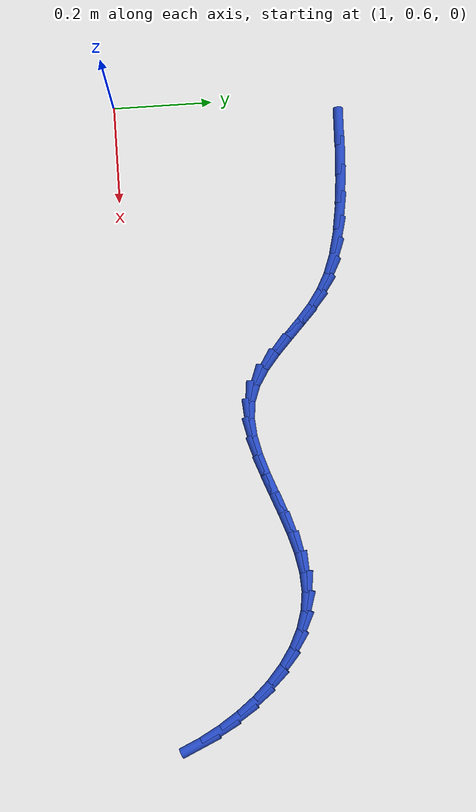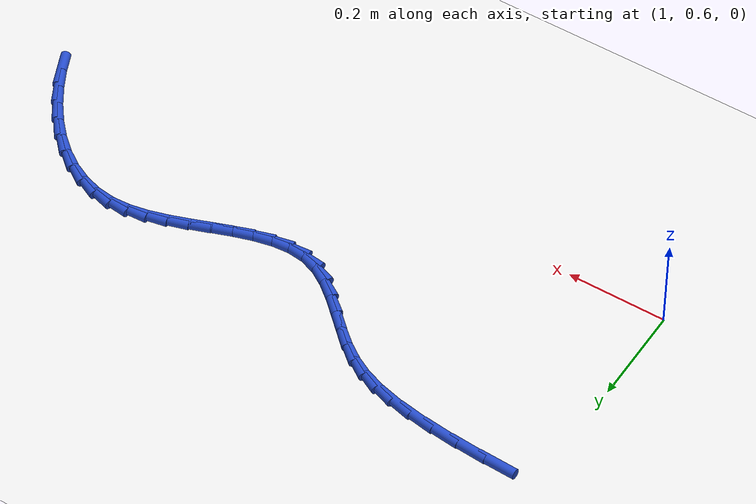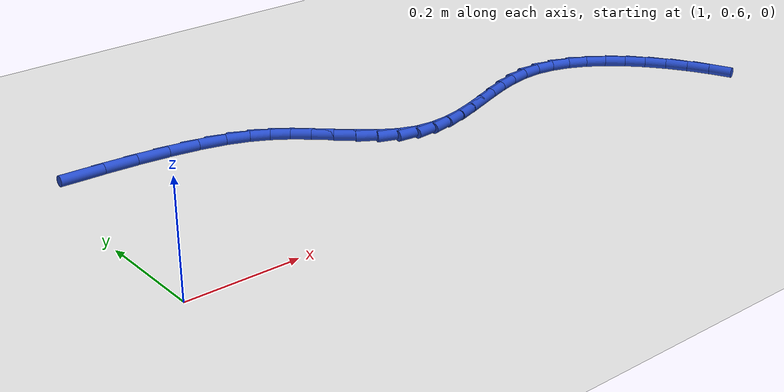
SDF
<sdf version="1.6">
 <world name="default">
  <model name="ground_plane">
   <static>1</static>
   <link name="link">
    <collision name="collision">
     <geometry><plane><normal>0 0 1</normal><size>100 100</size></plane></geometry>
     <surface><friction><ode><mu>100</mu><mu2>50</mu2></ode></friction></surface>
    </collision>
    <visual name="visual">
     <cast_shadows>0</cast_shadows>
     <geometry><plane><normal>0 0 1</normal><size>100 100</size></plane></geometry>
     <material>
      <script><uri>file://media/materials/scripts/gazebo.material</uri><name>Gazebo/WhiteGlow</name></script>
     </material>
    </visual>
   </link>
  </model>
  <model name="line">
   <link name="link_48">
    <pose>1.0763601885489549 1.054538523853975 0.01 0 1.57 -0.040430517750504186</pose>
    <collision name="collision">
     <geometry><cylinder><radius>0.01</radius><length>0.08</length></cylinder></geometry>
    </collision>
    <visual name="visual">
     <material>
      <script><name>Gazebo/Blue</name><uri>file://media/materials/scripts/gazebo.material</uri></script>
     </material>
     <geometry><cylinder><radius>0.01</radius><length>0.08</length></cylinder></geometry>
    </visual>
   </link>
   <link name="link_49">
    <pose>1.1377700075344708 1.0520543393584083 0.01 0 1.57 -0.07134132187872208</pose>
    <collision name="collision">
     <geometry><cylinder><radius>0.01</radius><length>0.08</length></cylinder></geometry>
    </collision>
    <visual name="visual">
     <material>
      <script><name>Gazebo/Blue</name><uri>file://media/materials/scripts/gazebo.material</uri></script>
     </material>
     <geometry><cylinder><radius>0.01</radius><length>0.08</length></cylinder></geometry>
    </visual>
   </link>
   <link name="link_50">
    <pose>1.1968287481775177 1.047833848119921 0.01 0 1.57 -0.11206325662532374</pose>
    <collision name="collision">
     <geometry><cylinder><radius>0.01</radius><length>0.08</length></cylinder></geometry>
    </collision>
    <visual name="visual">
     <material>
      <script><name>Gazebo/Blue</name><uri>file://media/materials/scripts/gazebo.material</uri></script>
     </material>
     <geometry><cylinder><radius>0.01</radius><length>0.08</length></cylinder></geometry>
    </visual>
   </link>
   <link name="link_51">
    <pose>1.2519963402352774 1.041625578132913 0.01 0 1.57 -0.16824041431538736</pose>
    <collision name="collision">
     <geometry><cylinder><radius>0.01</radius><length>0.08</length></cylinder></geometry>
    </collision>
    <visual name="visual">
     <material>
      <script><name>Gazebo/Blue</name><uri>file://media/materials/scripts/gazebo.material</uri></script>
     </material>
     <geometry><cylinder><radius>0.01</radius><length>0.08</length></cylinder></geometry>
    </visual>
   </link>
   <link name="link_52">
    <pose>1.30173271346493 1.0331780573917828 0.01 0 1.57 -0.24964533895977073</pose>
    <collision name="collision">
     <geometry><cylinder><radius>0.01</radius><length>0.08</length></cylinder></geometry>
    </collision>
    <visual name="visual">
     <material>
      <script><name>Gazebo/Blue</name><uri>file://media/materials/scripts/gazebo.material</uri></script>
     </material>
     <geometry><cylinder><radius>0.01</radius><length>0.08</length></cylinder></geometry>
    </visual>
   </link>
   <link name="link_53">
    <pose>1.3446758379282162 1.022229099277767 0.01 0 1.57 -0.35998212723259215</pose>
    <collision name="collision">
     <geometry><cylinder><radius>0.01</radius><length>0.08</length></cylinder></geometry>
    </collision>
    <visual name="visual">
     <material>
      <script><name>Gazebo/Blue</name><uri>file://media/materials/scripts/gazebo.material</uri></script>
     </material>
     <geometry><cylinder><radius>0.01</radius><length>0.08</length></cylinder></geometry>
    </visual>
   </link>
   <link name="link_54">
    <pose>1.3814214459663139 1.0083986974147134 0.01 0 1.57 -0.48775100203156085</pose>
    <collision name="collision">
     <geometry><cylinder><radius>0.01</radius><length>0.08</length></cylinder></geometry>
    </collision>
    <visual name="visual">
     <material>
      <script><name>Gazebo/Blue</name><uri>file://media/materials/scripts/gazebo.material</uri></script>
     </material>
     <geometry><cylinder><radius>0.01</radius><length>0.08</length></cylinder></geometry>
    </visual>
   </link>
   <link name="link_55">
    <pose>1.413777136583344 0.9912339142857912 0.01 0 1.57 -0.6129575581060966</pose>
    <collision name="collision">
     <geometry><cylinder><radius>0.01</radius><length>0.08</length></cylinder></geometry>
    </collision>
    <visual name="visual">
     <material>
      <script><name>Gazebo/Blue</name><uri>file://media/materials/scripts/gazebo.material</uri></script>
     </material>
     <geometry><cylinder><radius>0.01</radius><length>0.08</length></cylinder></geometry>
    </visual>
   </link>
   <link name="link_56">
    <pose>1.443568525797221 0.970280728095339 0.01 0 1.57 -0.711584287271909</pose>
    <collision name="collision">
     <geometry><cylinder><radius>0.01</radius><length>0.08</length></cylinder></geometry>
    </collision>
    <visual name="visual">
     <material>
      <script><name>Gazebo/Blue</name><uri>file://media/materials/scripts/gazebo.material</uri></script>
     </material>
     <geometry><cylinder><radius>0.01</radius><length>0.08</length></cylinder></geometry>
    </visual>
   </link>
   <link name="link_57">
    <pose>1.4724991946644577 0.945334183627276 0.01 0 1.57 -0.7575457044002362</pose>
    <collision name="collision">
     <geometry><cylinder><radius>0.01</radius><length>0.08</length></cylinder></geometry>
    </collision>
    <visual name="visual">
     <material>
      <script><name>Gazebo/Blue</name><uri>file://media/materials/scripts/gazebo.material</uri></script>
     </material>
     <geometry><cylinder><radius>0.01</radius><length>0.08</length></cylinder></geometry>
    </visual>
   </link>
   <link name="link_58">
    <pose>1.501373011101334 0.9180255902233212 0.01 0 1.57 -0.7499684025760196</pose>
    <collision name="collision">
     <geometry><cylinder><radius>0.01</radius><length>0.08</length></cylinder></geometry>
    </collision>
    <visual name="visual">
     <material>
      <script><name>Gazebo/Blue</name><uri>file://media/materials/scripts/gazebo.material</uri></script>
     </material>
     <geometry><cylinder><radius>0.01</radius><length>0.08</length></cylinder></geometry>
    </visual>
   </link>
   <link name="link_59">
    <pose>1.5305914487762449 0.8908075215400265 0.01 0 1.57 -0.6888449929496289</pose>
    <collision name="collision">
     <geometry><cylinder><radius>0.01</radius><length>0.08</length></cylinder></geometry>
    </collision>
    <visual name="visual">
     <material>
      <script><name>Gazebo/Blue</name><uri>file://media/materials/scripts/gazebo.material</uri></script>
     </material>
     <geometry><cylinder><radius>0.01</radius><length>0.08</length></cylinder></geometry>
    </visual>
   </link>
   <link name="link_60">
    <pose>1.5605541016255768 0.8661363876625933 0.01 0 1.57 -0.5638125483090682</pose>
    <collision name="collision">
     <geometry><cylinder><radius>0.01</radius><length>0.08</length></cylinder></geometry>
    </collision>
    <visual name="visual">
     <material>
      <script><name>Gazebo/Blue</name><uri>file://media/materials/scripts/gazebo.material</uri></script>
     </material>
     <geometry><cylinder><radius>0.01</radius><length>0.08</length></cylinder></geometry>
    </visual>
   </link>
   <link name="link_61">
    <pose>1.591660563585716 0.8464685986762215 0.01 0 1.57 -0.35891688800518856</pose>
    <collision name="collision">
     <geometry><cylinder><radius>0.01</radius><length>0.08</length></cylinder></geometry>
    </collision>
    <visual name="visual">
     <material>
      <script><name>Gazebo/Blue</name><uri>file://media/materials/scripts/gazebo.material</uri></script>
     </material>
     <geometry><cylinder><radius>0.01</radius><length>0.08</length></cylinder></geometry>
    </visual>
   </link>
   <link name="link_62">
    <pose>1.6243039983144294 0.8342218660952786 0.01 0 1.57 -0.11702031290534819</pose>
    <collision name="collision">
     <geometry><cylinder><radius>0.01</radius><length>0.08</length></cylinder></geometry>
    </collision>
    <visual name="visual">
     <material>
      <script><name>Gazebo/Blue</name><uri>file://media/materials/scripts/gazebo.material</uri></script>
     </material>
     <geometry><cylinder><radius>0.01</radius><length>0.08</length></cylinder></geometry>
    </visual>
   </link>
   <link name="link_63">
    <pose>1.6586076076627245 0.8301892228281101 0.01 0 1.57 0.0779850970648842</pose>
    <collision name="collision">
     <geometry><cylinder><radius>0.01</radius><length>0.08</length></cylinder></geometry>
    </collision>
    <visual name="visual">
     <material>
      <script><name>Gazebo/Blue</name><uri>file://media/materials/scripts/gazebo.material</uri></script>
     </material>
     <geometry><cylinder><radius>0.01</radius><length>0.08</length></cylinder></geometry>
    </visual>
   </link>
   <link name="link_64">
    <pose>1.6943318830750815 0.832980845457082 0.01 0 1.57 0.21549179162106377</pose>
    <collision name="collision">
     <geometry><cylinder><radius>0.01</radius><length>0.08</length></cylinder></geometry>
    </collision>
    <visual name="visual">
     <material>
      <script><name>Gazebo/Blue</name><uri>file://media/materials/scripts/gazebo.material</uri></script>
     </material>
     <geometry><cylinder><radius>0.01</radius><length>0.08</length></cylinder></geometry>
    </visual>
   </link>
   <link name="link_65">
    <pose>1.7312118273575963 0.8410535153640378 0.01 0 1.57 0.3030580675471703</pose>
    <collision name="collision">
     <geometry><cylinder><radius>0.01</radius><length>0.08</length></cylinder></geometry>
    </collision>
    <visual name="visual">
     <material>
      <script><name>Gazebo/Blue</name><uri>file://media/materials/scripts/gazebo.material</uri></script>
     </material>
     <geometry><cylinder><radius>0.01</radius><length>0.08</length></cylinder></geometry>
    </visual>
   </link>
   <link name="link_66">
    <pose>1.7689824433163641 0.8528640139308218 0.01 0 1.57 0.34975564579583357</pose>
    <collision name="collision">
     <geometry><cylinder><radius>0.01</radius><length>0.08</length></cylinder></geometry>
    </collision>
    <visual name="visual">
     <material>
      <script><name>Gazebo/Blue</name><uri>file://media/materials/scripts/gazebo.material</uri></script>
     </material>
     <geometry><cylinder><radius>0.01</radius><length>0.08</length></cylinder></geometry>
    </visual>
   </link>
   <link name="link_67">
    <pose>1.8073787337574805 0.8668691225392774 0.01 0 1.57 0.3615419262131408</pose>
    <collision name="collision">
     <geometry><cylinder><radius>0.01</radius><length>0.08</length></cylinder></geometry>
    </collision>
    <visual name="visual">
     <material>
      <script><name>Gazebo/Blue</name><uri>file://media/materials/scripts/gazebo.material</uri></script>
     </material>
     <geometry><cylinder><radius>0.01</radius><length>0.08</length></cylinder></geometry>
    </visual>
   </link>
   <link name="link_68">
    <pose>1.8461357014870414 0.8815256225712488 0.01 0 1.57 0.34048164826875305</pose>
    <collision name="collision">
     <geometry><cylinder><radius>0.01</radius><length>0.08</length></cylinder></geometry>
    </collision>
    <visual name="visual">
     <material>
      <script><name>Gazebo/Blue</name><uri>file://media/materials/scripts/gazebo.material</uri></script>
     </material>
     <geometry><cylinder><radius>0.01</radius><length>0.08</length></cylinder></geometry>
    </visual>
   </link>
   <link name="link_69">
    <pose>1.8849883493111417 0.8952902954085792 0.01 0 1.57 0.28491321692455995</pose>
    <collision name="collision">
     <geometry><cylinder><radius>0.01</radius><length>0.08</length></cylinder></geometry>
    </collision>
    <visual name="visual">
     <material>
      <script><name>Gazebo/Blue</name><uri>file://media/materials/scripts/gazebo.material</uri></script>
     </material>
     <geometry><cylinder><radius>0.01</radius><length>0.08</length></cylinder></geometry>
    </visual>
   </link>
   <link name="link_70">
    <pose>1.9236716800358782 0.906619922433113 0.01 0 1.57 0.1898819541309615</pose>
    <collision name="collision">
     <geometry><cylinder><radius>0.01</radius><length>0.08</length></cylinder></geometry>
    </collision>
    <visual name="visual">
     <material>
      <script><name>Gazebo/Blue</name><uri>file://media/materials/scripts/gazebo.material</uri></script>
     </material>
     <geometry><cylinder><radius>0.01</radius><length>0.08</length></cylinder></geometry>
    </visual>
   </link>
   <link name="link_71">
    <pose>1.961920696467345 0.9139712850266938 0.01 0 1.57 0.04869988583270662</pose>
    <collision name="collision">
     <geometry><cylinder><radius>0.01</radius><length>0.08</length></cylinder></geometry>
    </collision>
    <visual name="visual">
     <material>
      <script><name>Gazebo/Blue</name><uri>file://media/materials/scripts/gazebo.material</uri></script>
     </material>
     <geometry><cylinder><radius>0.01</radius><length>0.08</length></cylinder></geometry>
    </visual>
   </link>
   <link name="link_72">
    <pose>1.9994704064927342 0.9158013986607431 0.01 0 1.57 -0.12999805306448606</pose>
    <collision name="collision">
     <geometry><cylinder><radius>0.01</radius><length>0.08</length></cylinder></geometry>
    </collision>
    <visual name="visual">
     <material>
      <script><name>Gazebo/Blue</name><uri>file://media/materials/scripts/gazebo.material</uri></script>
     </material>
     <geometry><cylinder><radius>0.01</radius><length>0.08</length></cylinder></geometry>
    </visual>
   </link>
   <link name="link_73">
    <pose>2.036065582065469 0.9110171160206859 0.01 0 1.57 -0.303849990025133</pose>
    <collision name="collision">
     <geometry><cylinder><radius>0.01</radius><length>0.08</length></cylinder></geometry>
    </collision>
    <visual name="visual">
     <material>
      <script><name>Gazebo/Blue</name><uri>file://media/materials/scripts/gazebo.material</uri></script>
     </material>
     <geometry><cylinder><radius>0.01</radius><length>0.08</length></cylinder></geometry>
    </visual>
   </link>
   <link name="link_74">
    <pose>2.0714810999092403 0.8999122371626421 0.01 0 1.57 -0.4602779804719352</pose>
    <collision name="collision">
     <geometry><cylinder><radius>0.01</radius><length>0.08</length></cylinder></geometry>
    </collision>
    <visual name="visual">
     <material>
      <script><name>Gazebo/Blue</name><uri>file://media/materials/scripts/gazebo.material</uri></script>
     </material>
     <geometry><cylinder><radius>0.01</radius><length>0.08</length></cylinder></geometry>
    </visual>
   </link>
   <link name="link_75">
    <pose>2.1054976203205893 0.8830470153023335 0.01 0 1.57 -0.5979054581356953</pose>
    <collision name="collision">
     <geometry><cylinder><radius>0.01</radius><length>0.08</length></cylinder></geometry>
    </collision>
    <visual name="visual">
     <material>
      <script><name>Gazebo/Blue</name><uri>file://media/materials/scripts/gazebo.material</uri></script>
     </material>
     <geometry><cylinder><radius>0.01</radius><length>0.08</length></cylinder></geometry>
    </visual>
   </link>
   <link name="link_76">
    <pose>2.1378958035960567 0.8609817036554817 0.01 0 1.57 -0.7181755116216579</pose>
    <collision name="collision">
     <geometry><cylinder><radius>0.01</radius><length>0.08</length></cylinder></geometry>
    </collision>
    <visual name="visual">
     <material>
      <script><name>Gazebo/Blue</name><uri>file://media/materials/scripts/gazebo.material</uri></script>
     </material>
     <geometry><cylinder><radius>0.01</radius><length>0.08</length></cylinder></geometry>
    </visual>
   </link>
   <link name="link_77">
    <pose>2.168456310032186 0.8342765554378084 0.01 0 1.57 -0.8238563400160626</pose>
    <collision name="collision">
     <geometry><cylinder><radius>0.01</radius><length>0.08</length></cylinder></geometry>
    </collision>
    <visual name="visual">
     <material>
      <script><name>Gazebo/Blue</name><uri>file://media/materials/scripts/gazebo.material</uri></script>
     </material>
     <geometry><cylinder><radius>0.01</radius><length>0.08</length></cylinder></geometry>
    </visual>
   </link>
   <link name="link_78">
    <pose>2.1969597999255157 0.8034918238650348 0.01 0 1.57 -0.9180487413597018</pose>
    <collision name="collision">
     <geometry><cylinder><radius>0.01</radius><length>0.08</length></cylinder></geometry>
    </collision>
    <visual name="visual">
     <material>
      <script><name>Gazebo/Blue</name><uri>file://media/materials/scripts/gazebo.material</uri></script>
     </material>
     <geometry><cylinder><radius>0.01</radius><length>0.08</length></cylinder></geometry>
    </visual>
   </link>
   <link name="link_79">
    <pose>2.223186933572589 0.7691877621528833 0.01 0 1.57 -1.0037132220336393</pose>
    <collision name="collision">
     <geometry><cylinder><radius>0.01</radius><length>0.08</length></cylinder></geometry>
    </collision>
    <visual name="visual">
     <material>
      <script><name>Gazebo/Blue</name><uri>file://media/materials/scripts/gazebo.material</uri></script>
     </material>
     <geometry><cylinder><radius>0.01</radius><length>0.08</length></cylinder></geometry>
    </visual>
   </link>
   <link name="link_80">
    <pose>2.2469183712699463 0.731924623517075 0.01 0 1.57 -1.0835251083277215</pose>
    <collision name="collision">
     <geometry><cylinder><radius>0.01</radius><length>0.08</length></cylinder></geometry>
    </collision>
    <visual name="visual">
     <material>
      <script><name>Gazebo/Blue</name><uri>file://media/materials/scripts/gazebo.material</uri></script>
     </material>
     <geometry><cylinder><radius>0.01</radius><length>0.08</length></cylinder></geometry>
    </visual>
   </link>
   <link name="link_81">
    <pose>2.267934773314129 0.6922626611733316 0.01 0 1.57 -1.1598927508686923</pose>
    <collision name="collision">
     <geometry><cylinder><radius>0.01</radius><length>0.08</length></cylinder></geometry>
    </collision>
    <visual name="visual">
     <material>
      <script><name>Gazebo/Blue</name><uri>file://media/materials/scripts/gazebo.material</uri></script>
     </material>
     <geometry><cylinder><radius>0.01</radius><length>0.08</length></cylinder></geometry>
    </visual>
   </link>
  </model>
 </world>
</sdf>
